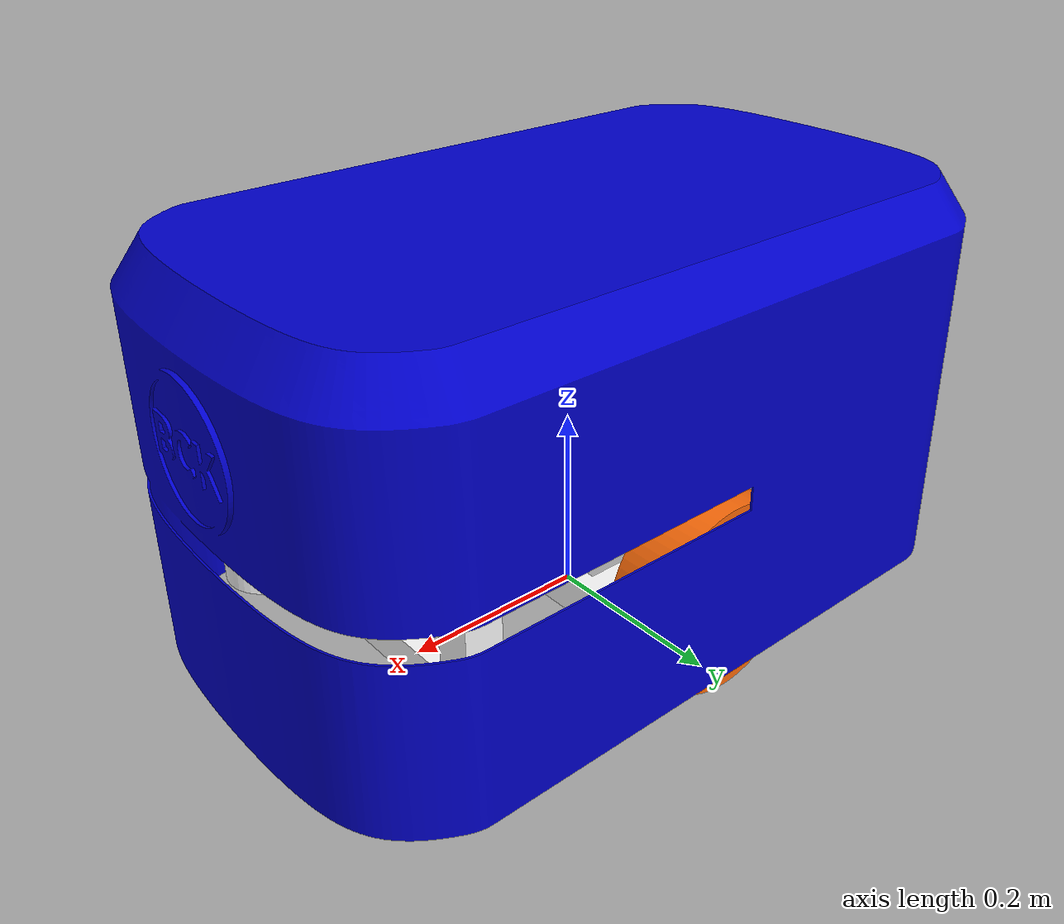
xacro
<?xml version="1.0" ?>
<robot name="bck_agv" xmlns:xacro="http://www.ros.org/wiki/xacro">

<xacro:include filename="$(find bck_description)/urdf/materials.xacro" />
<xacro:include filename="$(find bck_description)/urdf/bck_agv.trans" />
<xacro:include filename="$(find bck_description)/urdf/bck_agv.gazebo" />

<link name="base_footprint"/>

<joint name="base_joint" type="fixed">
  <parent link="base_footprint"/>
  <child link="base_link" />
  <origin xyz="0 0 0" rpy="0 0 0"/>
</joint>

<link name="base_link">
  <inertial>
    <origin xyz="0.029038187631651412 4.602592211716378e-05 0.1717335537030045" rpy="0 0 0"/>
    <mass value="14.804827109635726"/>
    <inertia ixx="0.454067" iyy="0.823719" izz="0.778336" ixy="-0.000231" iyz="-1e-05" ixz="-0.00441"/>
  </inertial>
  <visual>
    <origin xyz="0 0 0" rpy="0 0 0"/>
    <geometry>
      <mesh filename="package://bck_description/meshes/base_link.stl" scale="0.001 0.001 0.001"/>
    </geometry>
    <material name="white"/>
  </visual>
  <collision>
    <origin xyz="0 0 0" rpy="0 0 0"/>
    <geometry>
      <mesh filename="package://bck_description/meshes/base_link.stl" scale="0.001 0.001 0.001"/>
    </geometry>
  </collision>
</link>

<link name="dis_combine_v1_1">
  <inertial>
    <origin xyz="0.2764570619720478 -0.0008414747074660829 -0.1257300672035736" rpy="0 0 0"/>
    <mass value="19.187851413751936"/>
    <inertia ixx="0.94885" iyy="2.04799" izz="2.350678" ixy="-0.00704" iyz="0.003331" ixz="-0.019811"/>
  </inertial>
  <visual>
    <origin xyz="0.24 0.0 -0.385" rpy="0 0 0"/>
    <geometry>
      <mesh filename="package://bck_description/meshes/dis_combine_v1_1.stl" scale="0.001 0.001 0.001"/>
    </geometry>
    <material name="blue"/>
  </visual>
  <collision>
    <origin xyz="0.24 0.0 -0.385" rpy="0 0 0"/>
    <geometry>
      <mesh filename="package://bck_description/meshes/dis_combine_v1_1.stl" scale="0.001 0.001 0.001"/>
    </geometry>
  </collision>
</link>

<link name="TekerSag_1">
  <inertial>
    <origin xyz="-5.082464339177697e-15 -0.03600000000000167 -2.300937218535637e-14" rpy="0 0 0"/>
    <mass value="0.6081784085343237"/>
    <inertia ixx="0.00207" iyy="0.003908" izz="0.00207" ixy="-0.0" iyz="-0.0" ixz="0.0"/>
  </inertial>
  <visual>
    <origin xyz="0.0 0.1675 -0.1" rpy="0 0 0"/>
    <geometry>
      <mesh filename="package://bck_description/meshes/TekerSag_1.stl" scale="0.001 0.001 0.001"/>
    </geometry>
    <material name="orange"/>
  </visual>
  <collision>
    <origin xyz="0.0 0.1675 -0.1" rpy="0 0 0"/>
    <geometry>
      <mesh filename="package://bck_description/meshes/TekerSag_1.stl" scale="0.001 0.001 0.001"/>
    </geometry>
  </collision>
</link>

<link name="TekerSol_1">
  <inertial>
    <origin xyz="2.1297945802268406e-14 0.03599999999999898 -1.942890293094024e-16" rpy="0 0 0"/>
    <mass value="0.6081784085343248"/>
    <inertia ixx="0.00207" iyy="0.003908" izz="0.00207" ixy="0.0" iyz="0.0" ixz="-0.0"/>
  </inertial>
  <visual>
    <origin xyz="0.0 -0.1675 -0.1" rpy="0 0 0"/>
    <geometry>
      <mesh filename="package://bck_description/meshes/TekerSol_1.stl" scale="0.001 0.001 0.001"/>
    </geometry>
    <material name="orange"/>
  </visual>
  <collision>
    <origin xyz="0.0 -0.1675 -0.1" rpy="0 0 0"/>
    <geometry>
      <mesh filename="package://bck_description/meshes/TekerSol_1.stl" scale="0.001 0.001 0.001"/>
    </geometry>
  </collision>
</link>

<joint name="base_link_arti_dis" type="fixed">
  <origin xyz="-0.24 0.0 0.385" rpy="0 0 0"/>
  <parent link="base_link"/>
  <child link="dis_combine_v1_1"/>
</joint>

<joint name="sag_teker_vel_motor" type="continuous">
  <origin xyz="0.0 -0.1675 0.1" rpy="0 0 0"/>
  <parent link="base_link"/>
  <child link="TekerSag_1"/>
  <axis xyz="0.0 1.0 0.0"/>
</joint>

<joint name="sol_teker_vel_motor" type="continuous">
  <origin xyz="0.0 0.1675 0.1" rpy="0 0 0"/>
  <parent link="base_link"/>
  <child link="TekerSol_1"/>
  <axis xyz="0.0 1.0 0.0"/>
</joint>

</robot>

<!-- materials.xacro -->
<robot name="guzergah_agv" xmlns:xacro="http://www.ros.org/wiki/xacro" >

<material name="silver">
  <color rgba="0.700 0.700 0.700 1.000"/>
</material>

<material name="black">
  <color rgba="0.0 0.0 0.0 1.0"/>
</material>

<material name="blue">
  <color rgba="0.0 0.0 0.8 1.0"/>
</material>

<material name="green">
  <color rgba="0.0 1.0 0.0 1.0"/>
</material>

<material name="grey">
  <color rgba="0.2 0.2 0.2 1.0"/>
</material>

<material name="orange">
  <color rgba="${255/255} ${108/255} ${10/255} 1.0"/>
</material>

<material name="brown">
  <color rgba="${222/255} ${207/255} ${195/255} 1.0"/>
</material>

<material name="red">
  <color rgba="0.8 0.0 0.0 1.0"/>
</material>

<material name="white">
  <color rgba="1.0 1.0 1.0 1.0"/>
</material>

</robot>
